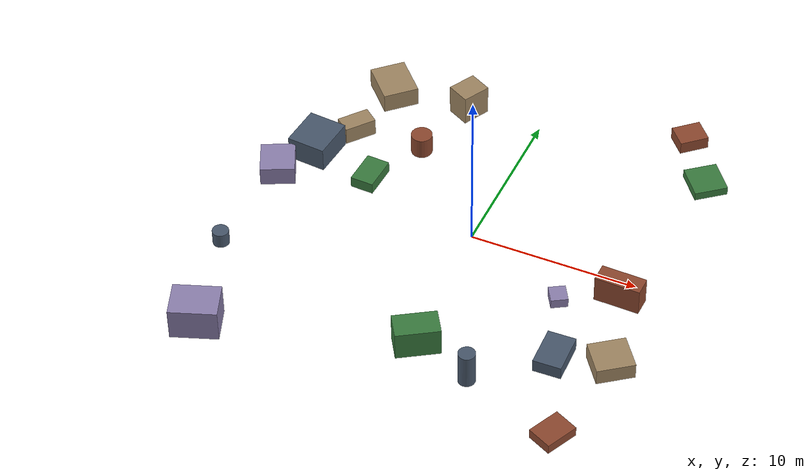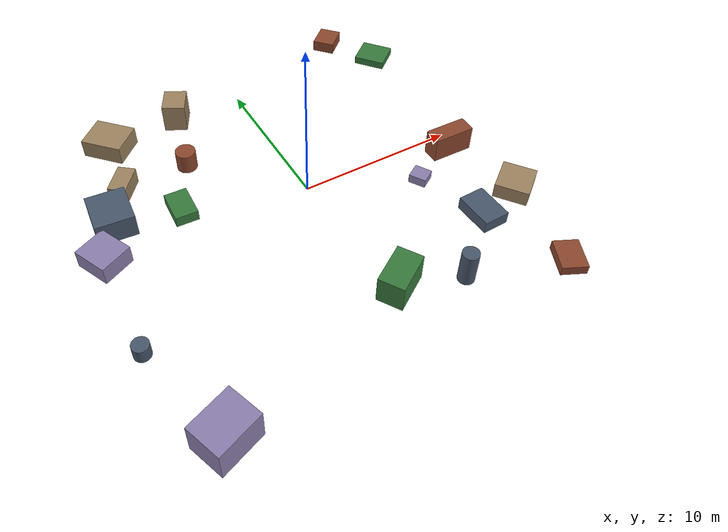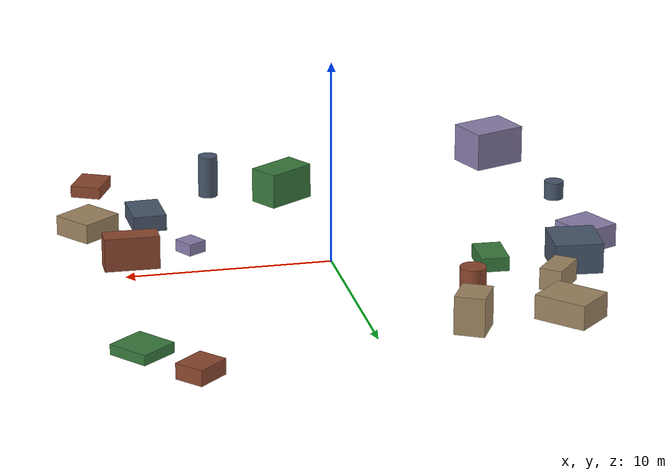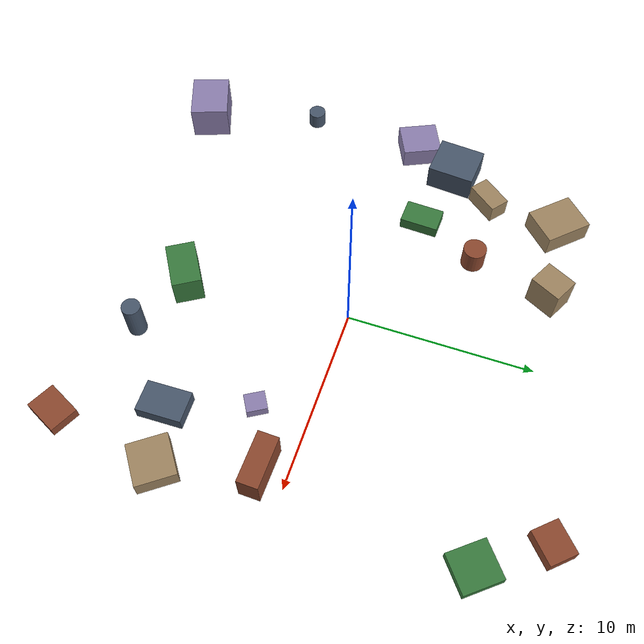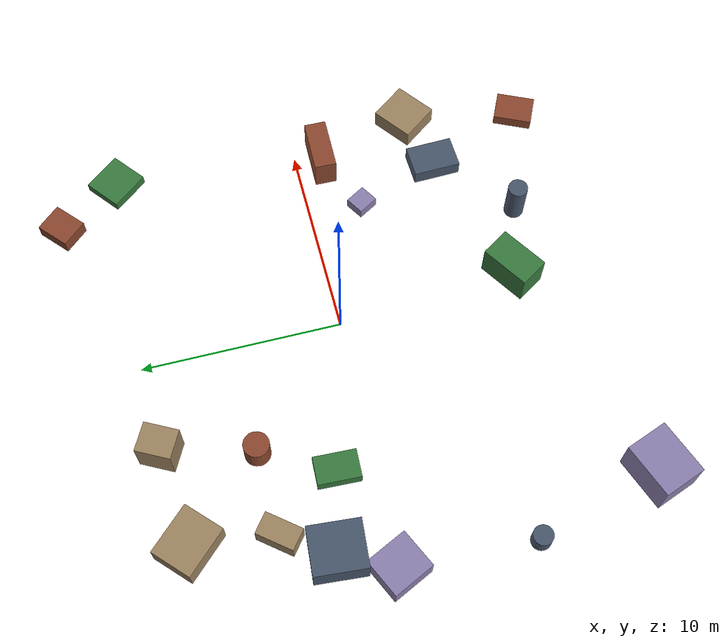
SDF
<sdf version="1.10">
 <world name="robotx_task1_uav_view">
  <gravity>0 0 -9.81</gravity>
  <physics name="physics" type="ode">
   <max_step_size>0.002</max_step_size>
   <real_time_factor>1.0</real_time_factor>
  </physics>
  <scene>
   <ambient>0.27 0.27 0.27 1.0</ambient>
   <background>0.62 0.75 0.92 1.0</background>
   <shadows>true</shadows>
   <grid>false</grid>
  </scene>
  <light name="sun" type="directional">
   <pose>0 0 300 0 0 0</pose>
   <diffuse>1.00 0.98 0.94 1.0</diffuse>
   <specular>1.00 1.00 1.00 1.0</specular>
   <direction>0.26 -0.12 -1.0</direction>
   <attenuation>
    <range>2500</range>
    <constant>0.85</constant>
    <linear>0.001</linear>
    <quadratic>0.00005</quadratic>
   </attenuation>
  </light>
  <plugin filename="gz-sim-physics-system" name="gz::sim::systems::Physics"/>
  <plugin filename="gz-sim-user-commands-system" name="gz::sim::systems::UserCommands"/>
  <plugin filename="gz-sim-scene-broadcaster-system" name="gz::sim::systems::SceneBroadcaster"/>
  <plugin filename="gz-sim-sensors-system" name="gz::sim::systems::Sensors">
   <render_engine>ogre2</render_engine>
  </plugin>
  <model name="scene_clutter_box_000">
   <static>true</static>
   <pose>-9.218 9.366 0.616 0 0 2.331470</pose>
   <link name="link">
    <visual name="v">
     <geometry><box><size>2.618 2.138 1.192</size></box></geometry>
     <material><ambient>0.45 0.38 0.32 1.0</ambient><diffuse>0.62 0.52 0.38 1.0</diffuse></material>
    </visual>
   </link>
  </model>
  <model name="scene_clutter_cyl_001">
   <static>true</static>
   <pose>4.184 -10.302 1.110 0 0 -0.306733</pose>
   <link name="link">
    <visual name="v">
     <geometry><cylinder><radius>0.494</radius><length>2.120</length></cylinder></geometry>
     <material><ambient>0.18 0.22 0.28 1.0</ambient><diffuse>0.28 0.34 0.42 1.0</diffuse></material>
    </visual>
   </link>
  </model>
  <model name="scene_clutter_box_002">
   <static>true</static>
   <pose>9.530 -1.318 0.846 0 0 3.119961</pose>
   <link name="link">
    <visual name="v">
     <geometry><box><size>2.666 1.104 1.652</size></box></geometry>
     <material><ambient>0.35 0.16 0.12 1.0</ambient><diffuse>0.55 0.28 0.18 1.0</diffuse></material>
    </visual>
   </link>
  </model>
  <model name="scene_clutter_box_003">
   <static>true</static>
   <pose>10.700 9.395 0.276 0 0 0.676683</pose>
   <link name="link">
    <visual name="v">
     <geometry><box><size>1.988 2.092 0.511</size></box></geometry>
     <material><ambient>0.12 0.30 0.14 1.0</ambient><diffuse>0.22 0.48 0.24 1.0</diffuse></material>
    </visual>
   </link>
  </model>
  <model name="scene_clutter_box_004">
   <static>true</static>
   <pose>-12.558 0.415 0.598 0 0 -2.704447</pose>
   <link name="link">
    <visual name="v">
     <geometry><box><size>2.024 2.186 1.156</size></box></geometry>
     <material><ambient>0.40 0.35 0.50 1.0</ambient><diffuse>0.55 0.50 0.68 1.0</diffuse></material>
    </visual>
   </link>
  </model>
  <model name="scene_clutter_box_005">
   <static>true</static>
   <pose>10.919 -6.222 0.507 0 0 -0.930425</pose>
   <link name="link">
    <visual name="v">
     <geometry><box><size>2.081 2.207 0.975</size></box></geometry>
     <material><ambient>0.45 0.38 0.32 1.0</ambient><diffuse>0.62 0.52 0.38 1.0</diffuse></material>
    </visual>
   </link>
  </model>
  <model name="scene_clutter_box_006">
   <static>true</static>
   <pose>-11.247 2.947 0.765 0 0 -1.656633</pose>
   <link name="link">
    <visual name="v">
     <geometry><box><size>2.580 2.339 1.490</size></box></geometry>
     <material><ambient>0.18 0.22 0.28 1.0</ambient><diffuse>0.28 0.34 0.42 1.0</diffuse></material>
    </visual>
   </link>
  </model>
  <model name="scene_clutter_box_007">
   <static>true</static>
   <pose>9.930 -12.108 0.318 0 0 -2.012909</pose>
   <link name="link">
    <visual name="v">
     <geometry><box><size>1.971 1.515 0.596</size></box></geometry>
     <material><ambient>0.35 0.16 0.12 1.0</ambient><diffuse>0.55 0.28 0.18 1.0</diffuse></material>
    </visual>
   </link>
  </model>
  <model name="scene_clutter_box_008">
   <static>true</static>
   <pose>-7.370 2.005 0.366 0 0 1.526462</pose>
   <link name="link">
    <visual name="v">
     <geometry><box><size>2.111 1.393 0.692</size></box></geometry>
     <material><ambient>0.12 0.30 0.14 1.0</ambient><diffuse>0.22 0.48 0.24 1.0</diffuse></material>
    </visual>
   </link>
  </model>
  <model name="scene_clutter_box_009">
   <static>true</static>
   <pose>6.406 -2.740 0.312 0 0 -2.600475</pose>
   <link name="link">
    <visual name="v">
     <geometry><box><size>0.988 1.079 0.584</size></box></geometry>
     <material><ambient>0.40 0.35 0.50 1.0</ambient><diffuse>0.55 0.50 0.68 1.0</diffuse></material>
    </visual>
   </link>
  </model>
  <model name="scene_clutter_box_010">
   <static>true</static>
   <pose>-4.485 9.785 0.952 0 0 2.657150</pose>
   <link name="link">
    <visual name="v">
     <geometry><box><size>1.452 1.735 1.864</size></box></geometry>
     <material><ambient>0.45 0.38 0.32 1.0</ambient><diffuse>0.62 0.52 0.38 1.0</diffuse></material>
    </visual>
   </link>
  </model>
  <model name="scene_clutter_box_011">
   <static>true</static>
   <pose>7.919 -6.976 0.419 0 0 -1.540040</pose>
   <link name="link">
    <visual name="v">
     <geometry><box><size>2.395 1.649 0.798</size></box></geometry>
     <material><ambient>0.18 0.22 0.28 1.0</ambient><diffuse>0.28 0.34 0.42 1.0</diffuse></material>
    </visual>
   </link>
  </model>
  <model name="scene_clutter_cyl_012">
   <static>true</static>
   <pose>-5.601 5.412 0.692 0 0 -1.910774</pose>
   <link name="link">
    <visual name="v">
     <geometry><cylinder><radius>0.632</radius><length>1.284</length></cylinder></geometry>
     <material><ambient>0.35 0.16 0.12 1.0</ambient><diffuse>0.55 0.28 0.18 1.0</diffuse></material>
    </visual>
   </link>
  </model>
  <model name="scene_clutter_box_013">
   <static>true</static>
   <pose>0.635 -9.044 0.894 0 0 2.132853</pose>
   <link name="link">
    <visual name="v">
     <geometry><box><size>1.566 2.566 1.747</size></box></geometry>
     <material><ambient>0.12 0.30 0.14 1.0</ambient><diffuse>0.22 0.48 0.24 1.0</diffuse></material>
    </visual>
   </link>
  </model>
  <model name="scene_clutter_box_014">
   <static>true</static>
   <pose>-11.101 -12.467 0.992 0 0 0.348769</pose>
   <link name="link">
    <visual name="v">
     <geometry><box><size>2.749 2.153 1.944</size></box></geometry>
     <material><ambient>0.40 0.35 0.50 1.0</ambient><diffuse>0.55 0.50 0.68 1.0</diffuse></material>
    </visual>
   </link>
  </model>
  <model name="scene_clutter_box_015">
   <static>true</static>
   <pose>-9.784 5.282 0.557 0 0 0.896988</pose>
   <link name="link">
    <visual name="v">
     <geometry><box><size>1.926 1.112 1.074</size></box></geometry>
     <material><ambient>0.45 0.38 0.32 1.0</ambient><diffuse>0.62 0.52 0.38 1.0</diffuse></material>
    </visual>
   </link>
  </model>
  <model name="scene_clutter_cyl_016">
   <static>true</static>
   <pose>-12.868 -6.196 0.501 0 0 -1.870129</pose>
   <link name="link">
    <visual name="v">
     <geometry><cylinder><radius>0.487</radius><length>0.902</length></cylinder></geometry>
     <material><ambient>0.18 0.22 0.28 1.0</ambient><diffuse>0.28 0.34 0.42 1.0</diffuse></material>
    </visual>
   </link>
  </model>
  <model name="scene_clutter_box_017">
   <static>true</static>
   <pose>8.589 12.504 0.402 0 0 -2.412128</pose>
   <link name="link">
    <visual name="v">
     <geometry><box><size>1.743 1.464 0.764</size></box></geometry>
     <material><ambient>0.35 0.16 0.12 1.0</ambient><diffuse>0.55 0.28 0.18 1.0</diffuse></material>
    </visual>
   </link>
  </model>
  <model name="uav_dataset_camera">
   <static>false</static>
   <pose>0 0 26 0 0 0</pose>
   <plugin filename="librobotx_overhead_motion_plugin.dylib" name="robotx::OverheadMotionPlugin">
    <radius_x_m>12.79758</radius_x_m>
    <radius_y_m>7.98874</radius_y_m>
    <angular_speed_rad_s>0.072581</angular_speed_rad_s>
    <phase_rad>4.561541</phase_rad>
    <z_wobble_m>0.08266</z_wobble_m>
    <z_wobble_hz>0.04632</z_wobble_hz>
    <z_wobble_phase_rad>2.200190</z_wobble_phase_rad>
   </plugin>
   <link name="camera_link">
    <gravity>false</gravity>
    <sensor name="top_down_rgb" type="camera">
     <always_on>true</always_on>
     <update_rate>20</update_rate>
     <pose>0 0 0 0 1.57079632679 0</pose>
     <camera>
      <horizontal_fov>1.05</horizontal_fov>
      <image><width>1920</width><height>1080</height><format>R8G8B8</format></image>
      <clip><near>0.2</near><far>600</far></clip>
     </camera>
     <topic>/robotx/uav/camera/image_raw</topic>
     <visualize>true</visualize>
    </sensor>
   </link>
  </model>
 </world>
</sdf>
